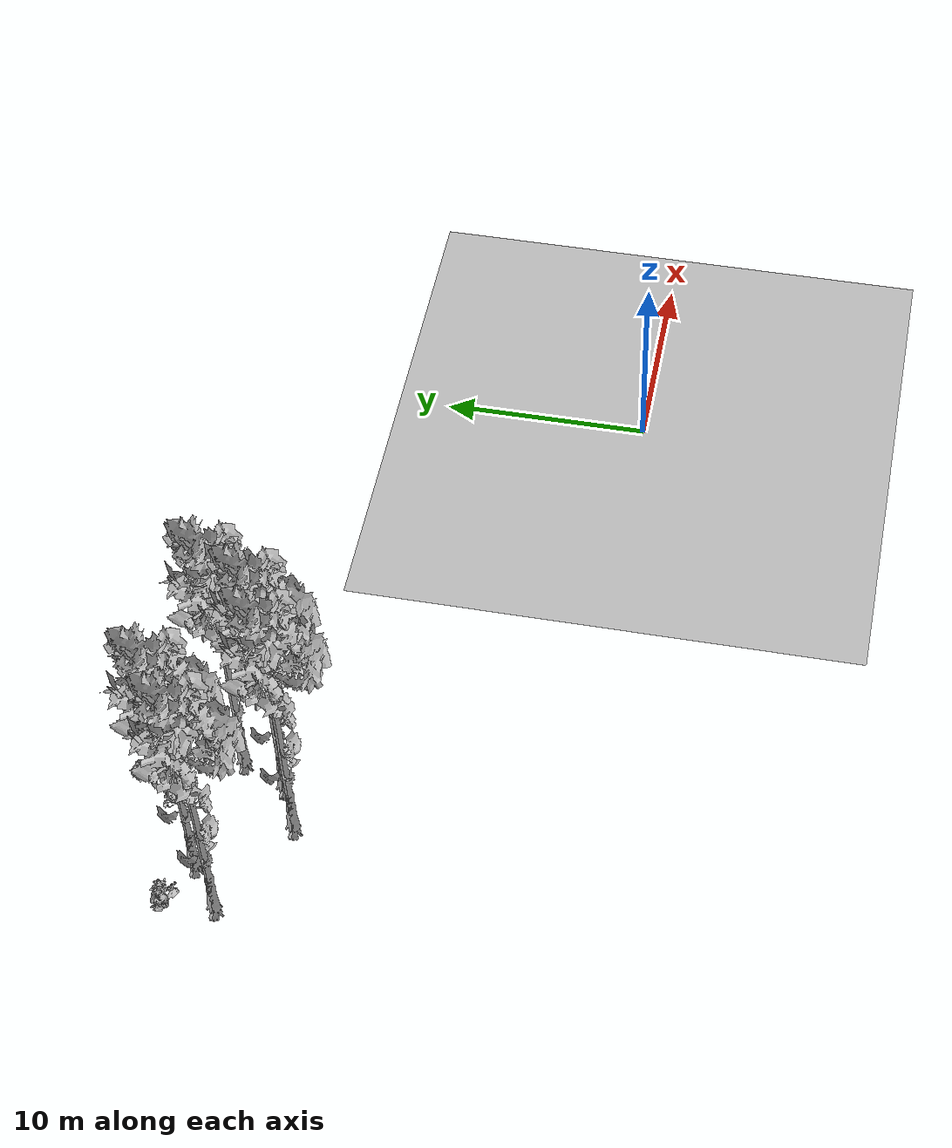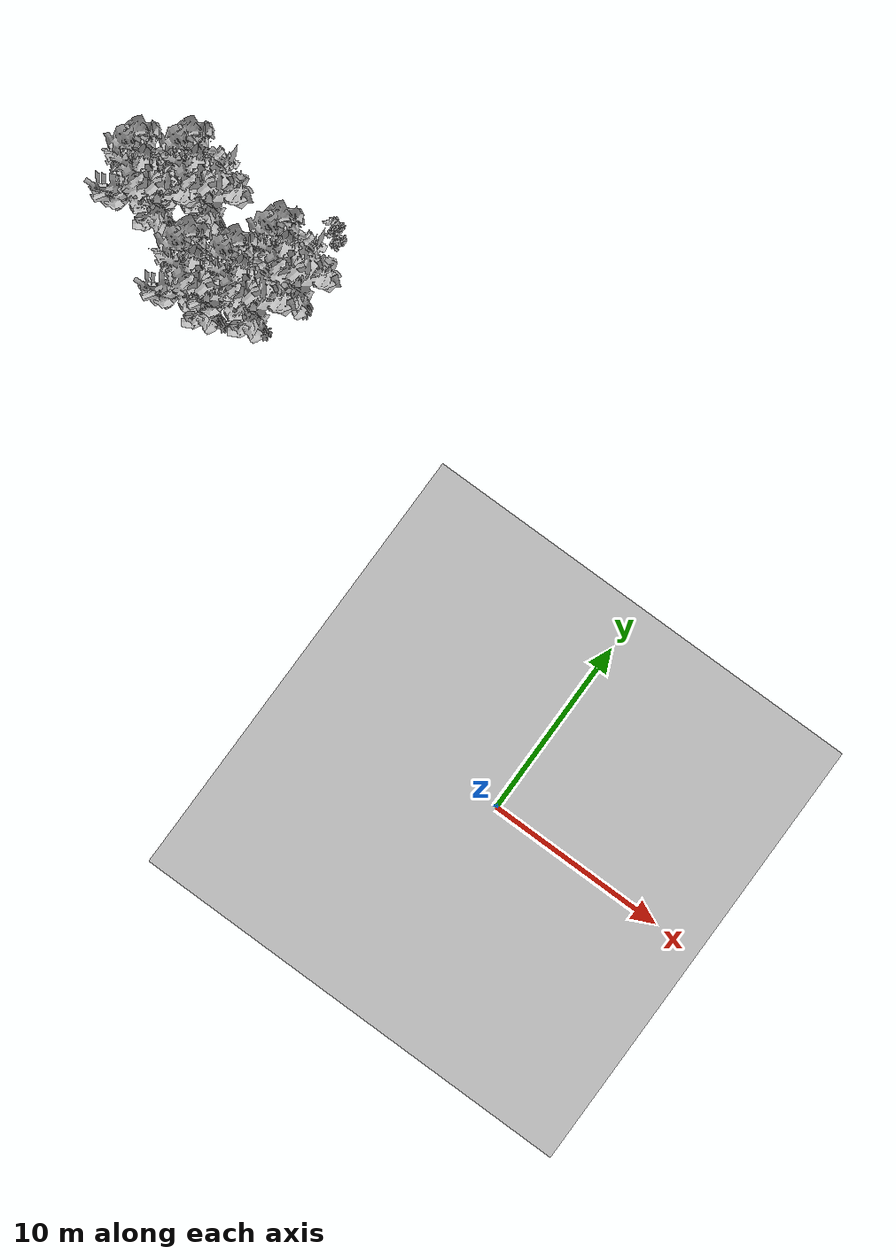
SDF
<sdf version="1.7">
 <world name="default">
  <model name="ground_plane">
   <static>1</static>
   <link name="link">
    <collision name="collision">
     <pose>-50 0 0 0 -0 0</pose>
     <geometry><plane><normal>0 0 1</normal><size>80 80</size></plane></geometry>
     <surface><contact><ode><min_depth>0.01</min_depth><max_vel>0</max_vel></ode></contact></surface>
    </collision>
    <visual name="grass">
     <cast_shadows>0</cast_shadows>
     <geometry>
      <mesh>
       <scale>0.46714285714285714 0.46714285714285714 0.1</scale>
       <uri>file://grass_plane/meshes/grass_plane.dae</uri>
      </mesh>
     </geometry>
    </visual>
   </link>
  </model>
  <model name="Tree 57">
   <static>1</static>
   <pose>-30.754030657876974 14.125549516797555 0 1.57079 -0 0</pose>
   <link name="link">
    <collision name="collision">
     <geometry><mesh><scale>3.5 5 3.5</scale><uri>model://tree_9/meshes/tree_9.obj</uri></mesh></geometry>
    </collision>
    <visual name="visual">
     <geometry><mesh><scale>3.5 5 3.5</scale><uri>model://tree_9/meshes/tree_9.obj</uri></mesh></geometry>
    </visual>
   </link>
  </model>
  <model name="Tree 107">
   <static>1</static>
   <pose>-26.088317276395934 11.726517374054467 0 1.57079 -0 0</pose>
   <link name="link">
    <collision name="collision">
     <geometry><mesh><scale>3.5 5 3.5</scale><uri>model://tree_9/meshes/tree_9.obj</uri></mesh></geometry>
    </collision>
    <visual name="visual">
     <geometry><mesh><scale>3.5 5 3.5</scale><uri>model://tree_9/meshes/tree_9.obj</uri></mesh></geometry>
    </visual>
   </link>
  </model>
  <model name="Tree 261">
   <static>1</static>
   <pose>-23.087106548759692 14.784504565436535 0 1.57079 -0 0</pose>
   <link name="link">
    <collision name="collision">
     <geometry><mesh><scale>3.5 5 3.5</scale><uri>model://tree_9/meshes/tree_9.obj</uri></mesh></geometry>
    </collision>
    <visual name="visual">
     <geometry><mesh><scale>3.5 5 3.5</scale><uri>model://tree_9/meshes/tree_9.obj</uri></mesh></geometry>
    </visual>
   </link>
  </model>
  <model name="Tree 514">
   <static>1</static>
   <pose>-24.097413139455846 12.66104642956524 0 1.57079 -0 0</pose>
   <link name="link">
    <collision name="collision">
     <geometry><mesh><scale>3.5 5 3.5</scale><uri>model://tree_9/meshes/tree_9.obj</uri></mesh></geometry>
    </collision>
    <visual name="visual">
     <geometry><mesh><scale>3.5 5 3.5</scale><uri>model://tree_9/meshes/tree_9.obj</uri></mesh></geometry>
    </visual>
   </link>
  </model>
  <model name="Tree 628">
   <static>1</static>
   <pose>-28.79381691428497 15.548651616977708 0 1.57079 -0 0</pose>
   <link name="link">
    <collision name="collision">
     <geometry><mesh><scale>3.5 5 3.5</scale><uri>model://tree_9/meshes/tree_9.obj</uri></mesh></geometry>
    </collision>
    <visual name="visual">
     <geometry><mesh><scale>3.5 5 3.5</scale><uri>model://tree_9/meshes/tree_9.obj</uri></mesh></geometry>
    </visual>
   </link>
  </model>
  <model name="Bush 163">
   <static>1</static>
   <pose>-31.16010220599377 16.31106449341611 0 1.57079 -0 0</pose>
   <link name="link">
    <collision name="collision">
     <geometry><mesh><scale>2 2 2</scale><uri>model://bush_0/meshes/bush_0.obj</uri></mesh></geometry>
     <surface><contact><collide_without_contact>false</collide_without_contact></contact></surface>
    </collision>
    <visual name="visual">
     <geometry><mesh><scale>2 2 2</scale><uri>model://bush_0/meshes/bush_0.obj</uri></mesh></geometry>
    </visual>
   </link>
  </model>
  <model name="Bush 326">
   <static>1</static>
   <pose>-24.42434827794475 19.22292986251665 0 1.57079 -0 0</pose>
   <link name="link">
    <collision name="collision">
     <geometry><mesh><scale>2 2 2</scale><uri>model://bush_2/meshes/bush_2.obj</uri></mesh></geometry>
     <surface><contact><collide_without_contact>false</collide_without_contact></contact></surface>
    </collision>
    <visual name="visual">
     <geometry><mesh><scale>2 2 2</scale><uri>model://bush_2/meshes/bush_2.obj</uri></mesh></geometry>
    </visual>
   </link>
  </model>
  <model name="Bush 358">
   <static>1</static>
   <pose>-27.2766499050077 15.499335409550426 0 1.57079 -0 0</pose>
   <link name="link">
    <collision name="collision">
     <geometry><mesh><scale>2 2 2</scale><uri>model://bush_2/meshes/bush_2.obj</uri></mesh></geometry>
     <surface><contact><collide_without_contact>false</collide_without_contact></contact></surface>
    </collision>
    <visual name="visual">
     <geometry><mesh><scale>2 2 2</scale><uri>model://bush_2/meshes/bush_2.obj</uri></mesh></geometry>
    </visual>
   </link>
  </model>
  <model name="Bush 406">
   <static>1</static>
   <pose>-25.797034304510987 17.313522583842968 0 1.57079 -0 0</pose>
   <link name="link">
    <collision name="collision">
     <geometry><mesh><scale>2 2 2</scale><uri>model://bush_4/meshes/bush_4.obj</uri></mesh></geometry>
     <surface><contact><collide_without_contact>false</collide_without_contact></contact></surface>
    </collision>
    <visual name="visual">
     <geometry><mesh><scale>2 2 2</scale><uri>model://bush_4/meshes/bush_4.obj</uri></mesh></geometry>
    </visual>
   </link>
  </model>
  <model name="Bush 479">
   <static>1</static>
   <pose>-30.857931819285046 16.474796501365105 0 1.57079 -0 0</pose>
   <link name="link">
    <collision name="collision">
     <geometry><mesh><scale>2 2 2</scale><uri>model://bush_5/meshes/bush_5.obj</uri></mesh></geometry>
     <surface><contact><collide_without_contact>false</collide_without_contact></contact></surface>
    </collision>
    <visual name="visual">
     <geometry><mesh><scale>2 2 2</scale><uri>model://bush_5/meshes/bush_5.obj</uri></mesh></geometry>
    </visual>
   </link>
  </model>
  <model name="Bush 632">
   <static>1</static>
   <pose>-23.957463586050807 18.726197375920712 0 1.57079 -0 0</pose>
   <link name="link">
    <collision name="collision">
     <geometry><mesh><scale>2 2 2</scale><uri>model://bush_2/meshes/bush_2.obj</uri></mesh></geometry>
     <surface><contact><collide_without_contact>false</collide_without_contact></contact></surface>
    </collision>
    <visual name="visual">
     <geometry><mesh><scale>2 2 2</scale><uri>model://bush_2/meshes/bush_2.obj</uri></mesh></geometry>
    </visual>
   </link>
  </model>
 </world>
</sdf>
